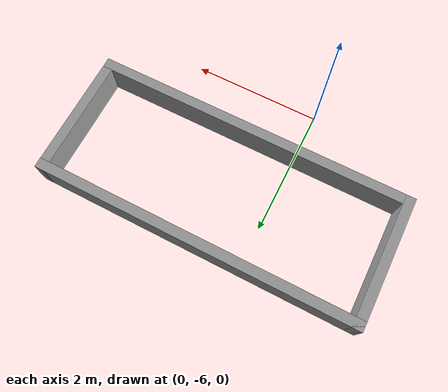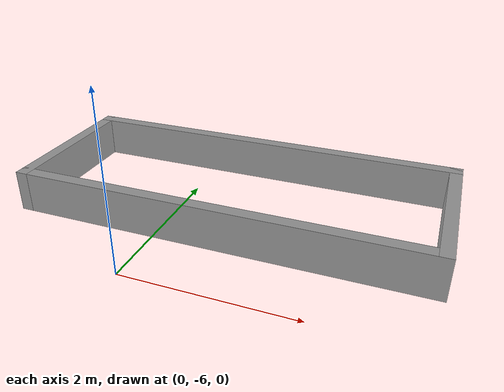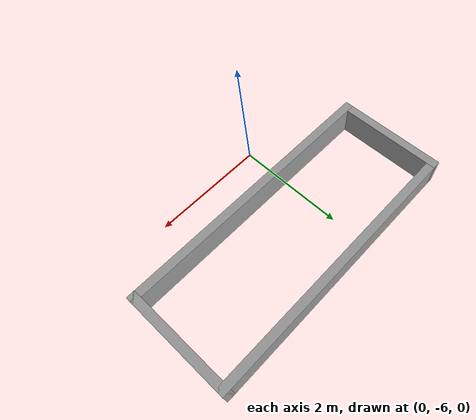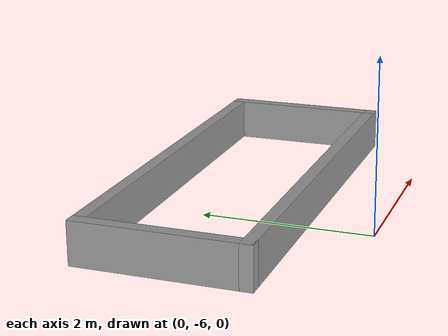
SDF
<?xml version='1.0'?>
<sdf version='1.6'>
  <model name='Map12'>
    <pose frame=''>0.7 -4.245 0 0 -0 0</pose>
    <link name='Wall_10'>
      <collision name='Wall_10_Collision'>
        <geometry>
          <box>
            <size>2 0.15 0.5</size>
          </box>
        </geometry>
        <pose frame=''>0 0 0.25 0 -0 0</pose>
      </collision>
      <visual name='Wall_10_Visual'>
        <pose frame=''>0 0 0.25 0 -0 0</pose>
        <geometry>
          <box>
            <size>2 0.15 0.5</size>
          </box>
        </geometry>
        <material>
          <script>
            <uri>file://media/materials/scripts/gazebo.material</uri>
            <name>Gazebo/Grey</name>
          </script>
          <ambient>1 1 1 1</ambient>
        </material>
      </visual>
      <pose frame=''>2.42 0 0 0 0 -1.5708</pose>
    </link>
    <link name='Wall_11'>
      <collision name='Wall_11_Collision'>
        <geometry>
          <box>
            <size>4.99 0.15 0.5</size>
          </box>
        </geometry>
        <pose frame=''>0 0 0.25 0 -0 0</pose>
      </collision>
      <visual name='Wall_11_Visual'>
        <pose frame=''>0 0 0.25 0 -0 0</pose>
        <geometry>
          <box>
            <size>4.99 0.15 0.5</size>
          </box>
        </geometry>
        <material>
          <script>
            <uri>file://media/materials/scripts/gazebo.material</uri>
            <name>Gazebo/Grey</name>
          </script>
          <ambient>1 1 1 1</ambient>
        </material>
      </visual>
      <pose frame=''>0 -0.925 0 0 -0 3.14159</pose>
    </link>
    <link name='Wall_12'>
      <collision name='Wall_12_Collision'>
        <geometry>
          <box>
            <size>2 0.15 0.5</size>
          </box>
        </geometry>
        <pose frame=''>0 0 0.25 0 -0 0</pose>
      </collision>
      <visual name='Wall_12_Visual'>
        <pose frame=''>0 0 0.25 0 -0 0</pose>
        <geometry>
          <box>
            <size>2 0.15 0.5</size>
          </box>
        </geometry>
        <material>
          <script>
            <uri>file://media/materials/scripts/gazebo.material</uri>
            <name>Gazebo/Grey</name>
          </script>
          <ambient>1 1 1 1</ambient>
        </material>
      </visual>
      <pose frame=''>-2.42 0 0 0 -0 1.5708</pose>
    </link>
    <link name='Wall_9'>
      <collision name='Wall_9_Collision'>
        <geometry>
          <box>
            <size>4.99 0.15 0.5</size>
          </box>
        </geometry>
        <pose frame=''>0 0 0.25 0 -0 0</pose>
      </collision>
      <visual name='Wall_9_Visual'>
        <pose frame=''>0 0 0.25 0 -0 0</pose>
        <geometry>
          <box>
            <size>4.99 0.15 0.5</size>
          </box>
        </geometry>
        <material>
          <script>
            <uri>file://media/materials/scripts/gazebo.material</uri>
            <name>Gazebo/Grey</name>
          </script>
          <ambient>1 1 1 1</ambient>
        </material>
      </visual>
      <pose frame=''>0 0.925 0 0 -0 0</pose>
    </link>
    <static>1</static>
  </model>
</sdf>
